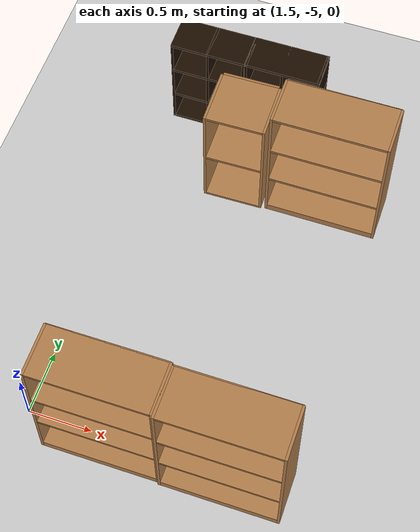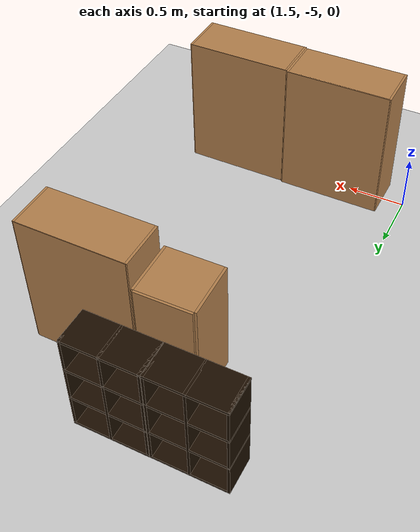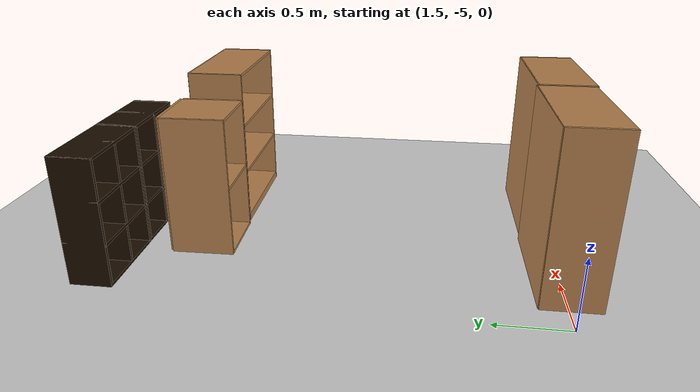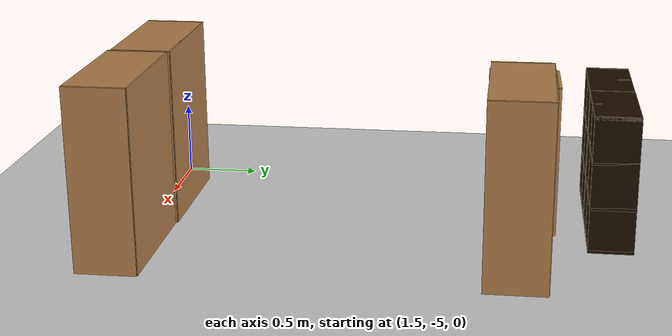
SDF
<sdf version="1.6">
 <world name="default">
  <model name="ground_plane">
   <static>1</static>
   <link name="link">
    <collision name="collision">
     <geometry><plane><normal>0 0 1</normal><size>100 100</size></plane></geometry>
     <surface>
      <contact><collide_bitmask>65535</collide_bitmask></contact>
      <friction><ode><mu>100</mu><mu2>50</mu2></ode></friction>
     </surface>
    </collision>
    <visual name="visual">
     <cast_shadows>0</cast_shadows>
     <geometry><plane><normal>0 0 1</normal><size>100 100</size></plane></geometry>
     <material>
      <script><uri>file://media/materials/scripts/gazebo.material</uri><name>Gazebo/Grey</name></script>
     </material>
    </visual>
   </link>
  </model>
  <model name="bookshelf">
   <static>1</static>
   <link name="link">
    <inertial><mass>1</mass></inertial>
    <collision name="back">
     <pose>0 0.005 0.6 0 -0 0</pose>
     <geometry><box><size>0.9 0.01 1.2</size></box></geometry>
    </collision>
    <visual name="visual1">
     <pose>0 0.005 0.6 0 -0 0</pose>
     <geometry><box><size>0.9 0.01 1.2</size></box></geometry>
     <material>
      <script><uri>file://media/materials/scripts/gazebo.material</uri><name>Gazebo/Wood</name></script>
     </material>
    </visual>
    <collision name="left_side">
     <pose>0.45 -0.195 0.6 0 -0 0</pose>
     <geometry><box><size>0.02 0.4 1.2</size></box></geometry>
    </collision>
    <visual name="visual2">
     <pose>0.45 -0.195 0.6 0 -0 0</pose>
     <geometry><box><size>0.02 0.4 1.2</size></box></geometry>
     <material>
      <script><uri>file://media/materials/scripts/gazebo.material</uri><name>Gazebo/Wood</name></script>
     </material>
    </visual>
    <collision name="right_side">
     <pose>-0.45 -0.195 0.6 0 -0 0</pose>
     <geometry><box><size>0.02 0.4 1.2</size></box></geometry>
    </collision>
    <visual name="visual3">
     <pose>-0.45 -0.195 0.6 0 -0 0</pose>
     <geometry><box><size>0.02 0.4 1.2</size></box></geometry>
     <material>
      <script><uri>file://media/materials/scripts/gazebo.material</uri><name>Gazebo/Wood</name></script>
     </material>
    </visual>
    <collision name="bottom">
     <pose>0 -0.195 0.03 0 -0 0</pose>
     <geometry><box><size>0.88 0.4 0.06</size></box></geometry>
    </collision>
    <visual name="visual4">
     <pose>0 -0.195 0.03 0 -0 0</pose>
     <geometry><box><size>0.88 0.4 0.06</size></box></geometry>
     <material>
      <script><uri>file://media/materials/scripts/gazebo.material</uri><name>Gazebo/Wood</name></script>
     </material>
    </visual>
    <collision name="top">
     <pose>0 -0.195 1.19 0 -0 0</pose>
     <geometry><box><size>0.88 0.4 0.02</size></box></geometry>
    </collision>
    <visual name="visual5">
     <pose>0 -0.195 1.19 0 -0 0</pose>
     <geometry><box><size>0.88 0.4 0.02</size></box></geometry>
     <material>
      <script><uri>file://media/materials/scripts/gazebo.material</uri><name>Gazebo/Wood</name></script>
     </material>
    </visual>
    <collision name="low_shelf">
     <pose>0 -0.195 0.43 0 -0 0</pose>
     <geometry><box><size>0.88 0.4 0.02</size></box></geometry>
    </collision>
    <visual name="visual6">
     <pose>0 -0.195 0.43 0 -0 0</pose>
     <geometry><box><size>0.88 0.4 0.02</size></box></geometry>
     <material>
      <script><uri>file://media/materials/scripts/gazebo.material</uri><name>Gazebo/Wood</name></script>
     </material>
    </visual>
    <collision name="high_shelf">
     <pose>0 -0.195 0.8 0 -0 0</pose>
     <geometry><box><size>0.88 0.4 0.02</size></box></geometry>
    </collision>
    <visual name="visual7">
     <pose>0 -0.195 0.8 0 -0 0</pose>
     <geometry><box><size>0.88 0.4 0.02</size></box></geometry>
     <material>
      <script><uri>file://media/materials/scripts/gazebo.material</uri><name>Gazebo/Wood</name></script>
     </material>
    </visual>
   </link>
   <pose>3.07661 -2.31495 0 0 -0 0</pose>
  </model>
  <model name="bookshelf_0">
   <static>1</static>
   <link name="link">
    <inertial><mass>1</mass></inertial>
    <collision name="back">
     <pose>0 0.005 0.6 0 -0 0</pose>
     <geometry><box><size>0.9 0.01 1.2</size></box></geometry>
    </collision>
    <visual name="visual1">
     <pose>0 0.005 0.6 0 -0 0</pose>
     <geometry><box><size>0.9 0.01 1.2</size></box></geometry>
     <material>
      <script><uri>file://media/materials/scripts/gazebo.material</uri><name>Gazebo/Wood</name></script>
     </material>
    </visual>
    <collision name="left_side">
     <pose>0.45 -0.195 0.6 0 -0 0</pose>
     <geometry><box><size>0.02 0.4 1.2</size></box></geometry>
    </collision>
    <visual name="visual2">
     <pose>0.45 -0.195 0.6 0 -0 0</pose>
     <geometry><box><size>0.02 0.4 1.2</size></box></geometry>
     <material>
      <script><uri>file://media/materials/scripts/gazebo.material</uri><name>Gazebo/Wood</name></script>
     </material>
    </visual>
    <collision name="right_side">
     <pose>-0.45 -0.195 0.6 0 -0 0</pose>
     <geometry><box><size>0.02 0.4 1.2</size></box></geometry>
    </collision>
    <visual name="visual3">
     <pose>-0.45 -0.195 0.6 0 -0 0</pose>
     <geometry><box><size>0.02 0.4 1.2</size></box></geometry>
     <material>
      <script><uri>file://media/materials/scripts/gazebo.material</uri><name>Gazebo/Wood</name></script>
     </material>
    </visual>
    <collision name="bottom">
     <pose>0 -0.195 0.03 0 -0 0</pose>
     <geometry><box><size>0.88 0.4 0.06</size></box></geometry>
    </collision>
    <visual name="visual4">
     <pose>0 -0.195 0.03 0 -0 0</pose>
     <geometry><box><size>0.88 0.4 0.06</size></box></geometry>
     <material>
      <script><uri>file://media/materials/scripts/gazebo.material</uri><name>Gazebo/Wood</name></script>
     </material>
    </visual>
    <collision name="top">
     <pose>0 -0.195 1.19 0 -0 0</pose>
     <geometry><box><size>0.88 0.4 0.02</size></box></geometry>
    </collision>
    <visual name="visual5">
     <pose>0 -0.195 1.19 0 -0 0</pose>
     <geometry><box><size>0.88 0.4 0.02</size></box></geometry>
     <material>
      <script><uri>file://media/materials/scripts/gazebo.material</uri><name>Gazebo/Wood</name></script>
     </material>
    </visual>
    <collision name="low_shelf">
     <pose>0 -0.195 0.43 0 -0 0</pose>
     <geometry><box><size>0.88 0.4 0.02</size></box></geometry>
    </collision>
    <visual name="visual6">
     <pose>0 -0.195 0.43 0 -0 0</pose>
     <geometry><box><size>0.88 0.4 0.02</size></box></geometry>
     <material>
      <script><uri>file://media/materials/scripts/gazebo.material</uri><name>Gazebo/Wood</name></script>
     </material>
    </visual>
    <collision name="high_shelf">
     <pose>0 -0.195 0.8 0 -0 0</pose>
     <geometry><box><size>0.88 0.4 0.02</size></box></geometry>
    </collision>
    <visual name="visual7">
     <pose>0 -0.195 0.8 0 -0 0</pose>
     <geometry><box><size>0.88 0.4 0.02</size></box></geometry>
     <material>
      <script><uri>file://media/materials/scripts/gazebo.material</uri><name>Gazebo/Wood</name></script>
     </material>
    </visual>
   </link>
   <pose>3.06869 -4.8324 0 0 -0 0</pose>
  </model>
  <model name="bookshelf_1">
   <static>1</static>
   <link name="link">
    <inertial><mass>1</mass></inertial>
    <collision name="back">
     <pose>0 0.005 0.6 0 -0 0</pose>
     <geometry><box><size>0.9 0.01 1.2</size></box></geometry>
    </collision>
    <visual name="visual1">
     <pose>0 0.005 0.6 0 -0 0</pose>
     <geometry><box><size>0.9 0.01 1.2</size></box></geometry>
     <material>
      <script><uri>file://media/materials/scripts/gazebo.material</uri><name>Gazebo/Wood</name></script>
     </material>
    </visual>
    <collision name="left_side">
     <pose>0.45 -0.195 0.6 0 -0 0</pose>
     <geometry><box><size>0.02 0.4 1.2</size></box></geometry>
    </collision>
    <visual name="visual2">
     <pose>0.45 -0.195 0.6 0 -0 0</pose>
     <geometry><box><size>0.02 0.4 1.2</size></box></geometry>
     <material>
      <script><uri>file://media/materials/scripts/gazebo.material</uri><name>Gazebo/Wood</name></script>
     </material>
    </visual>
    <collision name="right_side">
     <pose>-0.45 -0.195 0.6 0 -0 0</pose>
     <geometry><box><size>0.02 0.4 1.2</size></box></geometry>
    </collision>
    <visual name="visual3">
     <pose>-0.45 -0.195 0.6 0 -0 0</pose>
     <geometry><box><size>0.02 0.4 1.2</size></box></geometry>
     <material>
      <script><uri>file://media/materials/scripts/gazebo.material</uri><name>Gazebo/Wood</name></script>
     </material>
    </visual>
    <collision name="bottom">
     <pose>0 -0.195 0.03 0 -0 0</pose>
     <geometry><box><size>0.88 0.4 0.06</size></box></geometry>
    </collision>
    <visual name="visual4">
     <pose>0 -0.195 0.03 0 -0 0</pose>
     <geometry><box><size>0.88 0.4 0.06</size></box></geometry>
     <material>
      <script><uri>file://media/materials/scripts/gazebo.material</uri><name>Gazebo/Wood</name></script>
     </material>
    </visual>
    <collision name="top">
     <pose>0 -0.195 1.19 0 -0 0</pose>
     <geometry><box><size>0.88 0.4 0.02</size></box></geometry>
    </collision>
    <visual name="visual5">
     <pose>0 -0.195 1.19 0 -0 0</pose>
     <geometry><box><size>0.88 0.4 0.02</size></box></geometry>
     <material>
      <script><uri>file://media/materials/scripts/gazebo.material</uri><name>Gazebo/Wood</name></script>
     </material>
    </visual>
    <collision name="low_shelf">
     <pose>0 -0.195 0.43 0 -0 0</pose>
     <geometry><box><size>0.88 0.4 0.02</size></box></geometry>
    </collision>
    <visual name="visual6">
     <pose>0 -0.195 0.43 0 -0 0</pose>
     <geometry><box><size>0.88 0.4 0.02</size></box></geometry>
     <material>
      <script><uri>file://media/materials/scripts/gazebo.material</uri><name>Gazebo/Wood</name></script>
     </material>
    </visual>
    <collision name="high_shelf">
     <pose>0 -0.195 0.8 0 -0 0</pose>
     <geometry><box><size>0.88 0.4 0.02</size></box></geometry>
    </collision>
    <visual name="visual7">
     <pose>0 -0.195 0.8 0 -0 0</pose>
     <geometry><box><size>0.88 0.4 0.02</size></box></geometry>
     <material>
      <script><uri>file://media/materials/scripts/gazebo.material</uri><name>Gazebo/Wood</name></script>
     </material>
    </visual>
   </link>
   <pose>2.15249 -4.81844 0 0 -0 0</pose>
  </model>
  <model name="cabinet">
   <static>1</static>
   <link name="cabinet_bottom_plate">
    <inertial>
     <pose>0 0 -1 0 -0 0</pose>
     <inertia><ixx>2.05</ixx><ixy>0</ixy><ixz>0</ixz><iyy>2.05</iyy><iyz>0</iyz><izz>2.05</izz></inertia>
     <mass>25</mass>
    </inertial>
    <collision name="cabinet_bottom_plate_geom">
     <pose>0 0 0.01 0 -0 0</pose>
     <geometry><box><size>0.45 0.45 0.02</size></box></geometry>
    </collision>
    <visual name="cabinet_bottom_plate_geom_visual">
     <pose>0 0 0.01 0 -0 0</pose>
     <geometry><box><size>0.45 0.45 0.02</size></box></geometry>
     <material>
      <script><uri>file://media/materials/scripts/gazebo.material</uri><name>Gazebo/Wood</name></script>
     </material>
    </visual>
    <collision name="cabinet_bottom_plate_geom_cabinet_back_plate">
     <pose>0.235 0 0.51 0 -0 0</pose>
     <geometry><box><size>0.02 0.45 1.02</size></box></geometry>
    </collision>
    <visual name="cabinet_bottom_plate_geom_cabinet_back_plate_visual">
     <pose>0.235 0 0.51 0 -0 0</pose>
     <geometry><box><size>0.02 0.45 1.02</size></box></geometry>
     <material>
      <script><uri>file://media/materials/scripts/gazebo.material</uri><name>Gazebo/Wood</name></script>
     </material>
    </visual>
    <collision name="cabinet_bottom_plate_geom_cabinet_left_plate">
     <pose>0 0.235 0.51 0 -0 0</pose>
     <geometry><box><size>0.45 0.02 1.02</size></box></geometry>
    </collision>
    <visual name="cabinet_bottom_plate_geom_cabinet_left_plate_visual">
     <pose>0 0.235 0.51 0 -0 0</pose>
     <geometry><box><size>0.45 0.02 1.02</size></box></geometry>
     <material>
      <script><uri>file://media/materials/scripts/gazebo.material</uri><name>Gazebo/Wood</name></script>
     </material>
    </visual>
    <collision name="cabinet_bottom_plate_geom_cabinet_middle_plate">
     <pose>0 0 0.51 0 -0 0</pose>
     <geometry><box><size>0.45 0.45 0.02</size></box></geometry>
    </collision>
    <visual name="cabinet_bottom_plate_geom_cabinet_middle_plate_visual">
     <pose>0 0 0.51 0 -0 0</pose>
     <geometry><box><size>0.45 0.45 0.02</size></box></geometry>
     <material>
      <script><uri>file://media/materials/scripts/gazebo.material</uri><name>Gazebo/Wood</name></script>
     </material>
    </visual>
    <collision name="cabinet_bottom_plate_geom_cabinet_right_plate">
     <pose>0 -0.235 0.51 0 -0 0</pose>
     <geometry><box><size>0.45 0.02 1.02</size></box></geometry>
    </collision>
    <visual name="cabinet_bottom_plate_geom_cabinet_right_plate_visual">
     <pose>0 -0.235 0.51 0 -0 0</pose>
     <geometry><box><size>0.45 0.02 1.02</size></box></geometry>
     <material>
      <script><uri>file://media/materials/scripts/gazebo.material</uri><name>Gazebo/Wood</name></script>
     </material>
    </visual>
    <collision name="cabinet_bottom_plate_geom_cabinet_top_plate">
     <pose>0 0 1.01 0 -0 0</pose>
     <geometry><box><size>0.45 0.45 0.02</size></box></geometry>
    </collision>
    <visual name="cabinet_bottom_plate_geom_cabinet_top_plate_visual">
     <pose>0 0 1.01 0 -0 0</pose>
     <geometry><box><size>0.45 0.45 0.02</size></box></geometry>
     <material>
      <script><uri>file://media/materials/scripts/gazebo.material</uri><name>Gazebo/Wood</name></script>
     </material>
    </visual>
   </link>
   <pose>2.34001 -2.50112 0 0 -0 1.58728</pose>
  </model>
  <model name="6_Cube_StorageE">
   <link name="Wall_0">
    <pose>0 0 0.01 0 -0 0</pose>
    <inertial>
     <mass>1.6201</mass>
     <inertia><ixx>0.0119</ixx><iyy>0.0631</iyy><izz>0.0513</izz><ixy>0</ixy><ixz>0</ixz><iyz>0</iyz></inertia>
    </inertial>
    <collision name="Wall_0_Collision"><geometry><box><size>0.616 0.296 0.02</size></box></geometry></collision>
    <visual name="Wall_0_Visual">
     <geometry><box><size>0.616 0.296 0.02</size></box></geometry>
     <material>
      <script><uri>file://media/materials/scripts/gazebo.material</uri><name>Gazebo/Grey</name></script>
      <ambient>0.105882 0.0509804 0 1</ambient>
     </material>
    </visual>
   </link>
   <joint name="0_2" type="fixed">
    <pose>-0.308 0 0 0 -0 0</pose>
    <parent>Wall_2</parent>
    <child>Wall_0</child>
    <axis>
     <xyz>1 0 0</xyz>
     <use_parent_model_frame>0</use_parent_model_frame>
     <limit><lower>-1e+16</lower><upper>1e+16</upper></limit>
    </axis>
   </joint>
   <joint name="0_12" type="fixed">
    <parent>Wall_12</parent>
    <child>Wall_0</child>
    <axis>
     <xyz>0 0 1</xyz>
     <use_parent_model_frame>0</use_parent_model_frame>
     <limit><lower>-1e+16</lower><upper>1e+16</upper></limit>
    </axis>
   </joint>
   <joint name="0_4" type="fixed">
    <pose>0.308 0 0 0 -0 0</pose>
    <parent>Wall_4</parent>
    <child>Wall_0</child>
    <axis>
     <xyz>1 0 0</xyz>
     <use_parent_model_frame>0</use_parent_model_frame>
     <limit><lower>-1e+16</lower><upper>1e+16</upper></limit>
    </axis>
   </joint>
   <link name="Wall_10">
    <pose>0 0 0.61 0 -0 0</pose>
    <inertial>
     <mass>1.6201</mass>
     <inertia><ixx>0.0119</ixx><iyy>0.0631</iyy><izz>0.0513</izz><ixy>0</ixy><ixz>0</ixz><iyz>0</iyz></inertia>
    </inertial>
    <collision name="Wall_10_Collision"><geometry><box><size>0.616 0.296 0.02</size></box></geometry></collision>
    <visual name="Wall_10_Visual">
     <geometry><box><size>0.616 0.296 0.02</size></box></geometry>
     <material>
      <script><uri>file://media/materials/scripts/gazebo.material</uri><name>Gazebo/Grey</name></script>
      <ambient>0.105882 0.0509804 0 1</ambient>
     </material>
    </visual>
   </link>
   <joint name="10_2" type="fixed">
    <pose>-0.308 0 0 0 -0 0</pose>
    <parent>Wall_2</parent>
    <child>Wall_10</child>
    <axis>
     <xyz>1 0 0</xyz>
     <use_parent_model_frame>0</use_parent_model_frame>
     <limit><lower>-1e+16</lower><upper>1e+16</upper></limit>
    </axis>
   </joint>
   <joint name="10_12" type="fixed">
    <parent>Wall_12</parent>
    <child>Wall_10</child>
    <axis>
     <xyz>0 0 1</xyz>
     <use_parent_model_frame>0</use_parent_model_frame>
     <limit><lower>-1e+16</lower><upper>1e+16</upper></limit>
    </axis>
   </joint>
   <joint name="10_4" type="fixed">
    <pose>0.308 0 0 0 -0 0</pose>
    <parent>Wall_4</parent>
    <child>Wall_10</child>
    <axis>
     <xyz>1 0 0</xyz>
     <use_parent_model_frame>0</use_parent_model_frame>
     <limit><lower>-1e+16</lower><upper>1e+16</upper></limit>
    </axis>
   </joint>
   <link name="Wall_12">
    <pose>0 0 0.4575 0 -0 0</pose>
    <inertial>
     <mass>2.4065</mass>
     <inertia><ixx>0.0177</ixx><iyy>0.1855</iyy><izz>0.168</izz><ixy>0</ixy><ixz>0</ixz><iyz>0</iyz></inertia>
    </inertial>
    <collision name="Wall_12_Collision"><geometry><box><size>0.02 0.296 0.915</size></box></geometry></collision>
    <visual name="Wall_12_Visual">
     <geometry><box><size>0.02 0.296 0.915</size></box></geometry>
     <material>
      <script><uri>file://media/materials/scripts/gazebo.material</uri><name>Gazebo/Grey</name></script>
      <ambient>0.105882 0.0509804 0 1</ambient>
     </material>
    </visual>
   </link>
   <link name="Wall_2">
    <pose>-0.298 0 0.4575 0 -0 0</pose>
    <inertial>
     <mass>2.4065</mass>
     <inertia><ixx>0.0177</ixx><iyy>0.1855</iyy><izz>0.168</izz><ixy>0</ixy><ixz>0</ixz><iyz>0</iyz></inertia>
    </inertial>
    <collision name="Wall_2_Collision"><geometry><box><size>0.02 0.296 0.915</size></box></geometry></collision>
    <visual name="Wall_2_Visual">
     <geometry><box><size>0.02 0.296 0.915</size></box></geometry>
     <material>
      <script><uri>file://media/materials/scripts/gazebo.material</uri><name>Gazebo/Grey</name></script>
      <ambient>0.105882 0.0509804 0 1</ambient>
     </material>
    </visual>
   </link>
   <link name="Wall_4">
    <pose>0.298 0 0.4575 0 -0 0</pose>
    <inertial>
     <mass>2.4065</mass>
     <inertia><ixx>0.0177</ixx><iyy>0.1855</iyy><izz>0.168</izz><ixy>0</ixy><ixz>0</ixz><iyz>0</iyz></inertia>
    </inertial>
    <collision name="Wall_4_Collision"><geometry><box><size>0.02 0.296 0.915</size></box></geometry></collision>
    <visual name="Wall_4_Visual">
     <geometry><box><size>0.02 0.296 0.915</size></box></geometry>
     <material>
      <script><uri>file://media/materials/scripts/gazebo.material</uri><name>Gazebo/Grey</name></script>
      <ambient>0.105882 0.0509804 0 1</ambient>
     </material>
    </visual>
   </link>
   <link name="Wall_6">
    <pose>0 0 0.905 0 -0 0</pose>
    <inertial>
     <mass>1.6201</mass>
     <inertia><ixx>0.0119</ixx><iyy>0.0631</iyy><izz>0.0513</izz><ixy>0</ixy><ixz>0</ixz><iyz>0</iyz></inertia>
    </inertial>
    <collision name="Wall_6_Collision"><geometry><box><size>0.616 0.296 0.02</size></box></geometry></collision>
    <visual name="Wall_6_Visual">
     <geometry><box><size>0.616 0.296 0.02</size></box></geometry>
     <material>
      <script><uri>file://media/materials/scripts/gazebo.material</uri><name>Gazebo/Grey</name></script>
      <ambient>0.105882 0.0509804 0 1</ambient>
     </material>
    </visual>
   </link>
   <joint name="6_2" type="fixed">
    <pose>-0.308 0 0 0 -0 0</pose>
    <parent>Wall_2</parent>
    <child>Wall_6</child>
    <axis>
     <xyz>2 0 0</xyz>
     <use_parent_model_frame>0</use_parent_model_frame>
     <limit><lower>-1e+16</lower><upper>1e+16</upper></limit>
    </axis>
   </joint>
   <joint name="6_12" type="fixed">
    <parent>Wall_12</parent>
    <child>Wall_6</child>
    <axis>
     <xyz>0 0 1</xyz>
     <use_parent_model_frame>0</use_parent_model_frame>
     <limit><lower>-1e+16</lower><upper>1e+16</upper></limit>
    </axis>
   </joint>
   <joint name="6_4" type="fixed">
    <pose>0.308 0 0 0 -0 0</pose>
    <parent>Wall_4</parent>
    <child>Wall_6</child>
    <axis>
     <xyz>1 0 0</xyz>
     <use_parent_model_frame>0</use_parent_model_frame>
     <limit><lower>-1e+16</lower><upper>1e+16</upper></limit>
    </axis>
   </joint>
   <link name="Wall_8">
    <pose>0 0 0.305 0 -0 0</pose>
    <inertial>
     <mass>1.6201</mass>
     <inertia><ixx>0.0119</ixx><iyy>0.0631</iyy><izz>0.0513</izz><ixy>0</ixy><ixz>0</ixz><iyz>0</iyz></inertia>
    </inertial>
    <collision name="Wall_8_Collision"><geometry><box><size>0.616 0.296 0.02</size></box></geometry></collision>
    <visual name="Wall_8_Visual">
     <geometry><box><size>0.616 0.296 0.02</size></box></geometry>
     <material>
      <script><uri>file://media/materials/scripts/gazebo.material</uri><name>Gazebo/Grey</name></script>
      <ambient>0.105882 0.0509804 0 1</ambient>
     </material>
    </visual>
   </link>
   <joint name="8_2" type="fixed">
    <pose>-0.308 0 0 0 -0 0</pose>
    <parent>Wall_2</parent>
    <child>Wall_8</child>
    <axis>
     <xyz>1 0 0</xyz>
     <use_parent_model_frame>0</use_parent_model_frame>
     <limit><lower>-1e+16</lower><upper>1e+16</upper></limit>
    </axis>
   </joint>
   <joint name="8_12" type="fixed">
    <parent>Wall_12</parent>
    <child>Wall_8</child>
    <axis>
     <xyz>0 0 1</xyz>
     <use_parent_model_frame>0</use_parent_model_frame>
     <limit><lower>-1e+16</lower><upper>1e+16</upper></limit>
    </axis>
   </joint>
   <joint name="8_4" type="fixed">
    <pose>0.308 0 0 0 -0 0</pose>
    <parent>Wall_4</parent>
    <child>Wall_8</child>
    <axis>
     <xyz>1 0 0</xyz>
     <use_parent_model_frame>0</use_parent_model_frame>
     <limit><lower>-1e+16</lower><upper>1e+16</upper></limit>
    </axis>
   </joint>
   <static>1</static>
   <pose>1.90019 -1.90779 0 0 -0 0</pose>
  </model>
  <model name="6_Cube_StorageE_0">
   <link name="Wall_0">
    <pose>0 0 0.01 0 -0 0</pose>
    <inertial>
     <mass>1.6201</mass>
     <inertia><ixx>0.0119</ixx><iyy>0.0631</iyy><izz>0.0513</izz><ixy>0</ixy><ixz>0</ixz><iyz>0</iyz></inertia>
    </inertial>
    <collision name="Wall_0_Collision"><geometry><box><size>0.616 0.296 0.02</size></box></geometry></collision>
    <visual name="Wall_0_Visual">
     <geometry><box><size>0.616 0.296 0.02</size></box></geometry>
     <material>
      <script><uri>file://media/materials/scripts/gazebo.material</uri><name>Gazebo/Grey</name></script>
      <ambient>0.105882 0.0509804 0 1</ambient>
     </material>
    </visual>
   </link>
   <joint name="0_2" type="fixed">
    <pose>-0.308 0 0 0 -0 0</pose>
    <parent>Wall_2</parent>
    <child>Wall_0</child>
    <axis>
     <xyz>1 0 0</xyz>
     <use_parent_model_frame>0</use_parent_model_frame>
     <limit><lower>-1e+16</lower><upper>1e+16</upper></limit>
    </axis>
   </joint>
   <joint name="0_12" type="fixed">
    <parent>Wall_12</parent>
    <child>Wall_0</child>
    <axis>
     <xyz>0 0 1</xyz>
     <use_parent_model_frame>0</use_parent_model_frame>
     <limit><lower>-1e+16</lower><upper>1e+16</upper></limit>
    </axis>
   </joint>
   <joint name="0_4" type="fixed">
    <pose>0.308 0 0 0 -0 0</pose>
    <parent>Wall_4</parent>
    <child>Wall_0</child>
    <axis>
     <xyz>1 0 0</xyz>
     <use_parent_model_frame>0</use_parent_model_frame>
     <limit><lower>-1e+16</lower><upper>1e+16</upper></limit>
    </axis>
   </joint>
   <link name="Wall_10">
    <pose>0 0 0.61 0 -0 0</pose>
    <inertial>
     <mass>1.6201</mass>
     <inertia><ixx>0.0119</ixx><iyy>0.0631</iyy><izz>0.0513</izz><ixy>0</ixy><ixz>0</ixz><iyz>0</iyz></inertia>
    </inertial>
    <collision name="Wall_10_Collision"><geometry><box><size>0.616 0.296 0.02</size></box></geometry></collision>
    <visual name="Wall_10_Visual">
     <geometry><box><size>0.616 0.296 0.02</size></box></geometry>
     <material>
      <script><uri>file://media/materials/scripts/gazebo.material</uri><name>Gazebo/Grey</name></script>
      <ambient>0.105882 0.0509804 0 1</ambient>
     </material>
    </visual>
   </link>
   <joint name="10_2" type="fixed">
    <pose>-0.308 0 0 0 -0 0</pose>
    <parent>Wall_2</parent>
    <child>Wall_10</child>
    <axis>
     <xyz>1 0 0</xyz>
     <use_parent_model_frame>0</use_parent_model_frame>
     <limit><lower>-1e+16</lower><upper>1e+16</upper></limit>
    </axis>
   </joint>
   <joint name="10_12" type="fixed">
    <parent>Wall_12</parent>
    <child>Wall_10</child>
    <axis>
     <xyz>0 0 1</xyz>
     <use_parent_model_frame>0</use_parent_model_frame>
     <limit><lower>-1e+16</lower><upper>1e+16</upper></limit>
    </axis>
   </joint>
   <joint name="10_4" type="fixed">
    <pose>0.308 0 0 0 -0 0</pose>
    <parent>Wall_4</parent>
    <child>Wall_10</child>
    <axis>
     <xyz>1 0 0</xyz>
     <use_parent_model_frame>0</use_parent_model_frame>
     <limit><lower>-1e+16</lower><upper>1e+16</upper></limit>
    </axis>
   </joint>
   <link name="Wall_12">
    <pose>0 0 0.4575 0 -0 0</pose>
    <inertial>
     <mass>2.4065</mass>
     <inertia><ixx>0.0177</ixx><iyy>0.1855</iyy><izz>0.168</izz><ixy>0</ixy><ixz>0</ixz><iyz>0</iyz></inertia>
    </inertial>
    <collision name="Wall_12_Collision"><geometry><box><size>0.02 0.296 0.915</size></box></geometry></collision>
    <visual name="Wall_12_Visual">
     <geometry><box><size>0.02 0.296 0.915</size></box></geometry>
     <material>
      <script><uri>file://media/materials/scripts/gazebo.material</uri><name>Gazebo/Grey</name></script>
      <ambient>0.105882 0.0509804 0 1</ambient>
     </material>
    </visual>
   </link>
   <link name="Wall_2">
    <pose>-0.298 0 0.4575 0 -0 0</pose>
    <inertial>
     <mass>2.4065</mass>
     <inertia><ixx>0.0177</ixx><iyy>0.1855</iyy><izz>0.168</izz><ixy>0</ixy><ixz>0</ixz><iyz>0</iyz></inertia>
    </inertial>
    <collision name="Wall_2_Collision"><geometry><box><size>0.02 0.296 0.915</size></box></geometry></collision>
    <visual name="Wall_2_Visual">
     <geometry><box><size>0.02 0.296 0.915</size></box></geometry>
     <material>
      <script><uri>file://media/materials/scripts/gazebo.material</uri><name>Gazebo/Grey</name></script>
      <ambient>0.105882 0.0509804 0 1</ambient>
     </material>
    </visual>
   </link>
   <link name="Wall_4">
    <pose>0.298 0 0.4575 0 -0 0</pose>
    <inertial>
     <mass>2.4065</mass>
     <inertia><ixx>0.0177</ixx><iyy>0.1855</iyy><izz>0.168</izz><ixy>0</ixy><ixz>0</ixz><iyz>0</iyz></inertia>
    </inertial>
    <collision name="Wall_4_Collision"><geometry><box><size>0.02 0.296 0.915</size></box></geometry></collision>
    <visual name="Wall_4_Visual">
     <geometry><box><size>0.02 0.296 0.915</size></box></geometry>
     <material>
      <script><uri>file://media/materials/scripts/gazebo.material</uri><name>Gazebo/Grey</name></script>
      <ambient>0.105882 0.0509804 0 1</ambient>
     </material>
    </visual>
   </link>
   <link name="Wall_6">
    <pose>0 0 0.905 0 -0 0</pose>
    <inertial>
     <mass>1.6201</mass>
     <inertia><ixx>0.0119</ixx><iyy>0.0631</iyy><izz>0.0513</izz><ixy>0</ixy><ixz>0</ixz><iyz>0</iyz></inertia>
    </inertial>
    <collision name="Wall_6_Collision"><geometry><box><size>0.616 0.296 0.02</size></box></geometry></collision>
    <visual name="Wall_6_Visual">
     <geometry><box><size>0.616 0.296 0.02</size></box></geometry>
     <material>
      <script><uri>file://media/materials/scripts/gazebo.material</uri><name>Gazebo/Grey</name></script>
      <ambient>0.105882 0.0509804 0 1</ambient>
     </material>
    </visual>
   </link>
   <joint name="6_2" type="fixed">
    <pose>-0.308 0 0 0 -0 0</pose>
    <parent>Wall_2</parent>
    <child>Wall_6</child>
    <axis>
     <xyz>2 0 0</xyz>
     <use_parent_model_frame>0</use_parent_model_frame>
     <limit><lower>-1e+16</lower><upper>1e+16</upper></limit>
    </axis>
   </joint>
   <joint name="6_12" type="fixed">
    <parent>Wall_12</parent>
    <child>Wall_6</child>
    <axis>
     <xyz>0 0 1</xyz>
     <use_parent_model_frame>0</use_parent_model_frame>
     <limit><lower>-1e+16</lower><upper>1e+16</upper></limit>
    </axis>
   </joint>
   <joint name="6_4" type="fixed">
    <pose>0.308 0 0 0 -0 0</pose>
    <parent>Wall_4</parent>
    <child>Wall_6</child>
    <axis>
     <xyz>1 0 0</xyz>
     <use_parent_model_frame>0</use_parent_model_frame>
     <limit><lower>-1e+16</lower><upper>1e+16</upper></limit>
    </axis>
   </joint>
   <link name="Wall_8">
    <pose>0 0 0.305 0 -0 0</pose>
    <inertial>
     <mass>1.6201</mass>
     <inertia><ixx>0.0119</ixx><iyy>0.0631</iyy><izz>0.0513</izz><ixy>0</ixy><ixz>0</ixz><iyz>0</iyz></inertia>
    </inertial>
    <collision name="Wall_8_Collision"><geometry><box><size>0.616 0.296 0.02</size></box></geometry></collision>
    <visual name="Wall_8_Visual">
     <geometry><box><size>0.616 0.296 0.02</size></box></geometry>
     <material>
      <script><uri>file://media/materials/scripts/gazebo.material</uri><name>Gazebo/Grey</name></script>
      <ambient>0.105882 0.0509804 0 1</ambient>
     </material>
    </visual>
   </link>
   <joint name="8_2" type="fixed">
    <pose>-0.308 0 0 0 -0 0</pose>
    <parent>Wall_2</parent>
    <child>Wall_8</child>
    <axis>
     <xyz>1 0 0</xyz>
     <use_parent_model_frame>0</use_parent_model_frame>
     <limit><lower>-1e+16</lower><upper>1e+16</upper></limit>
    </axis>
   </joint>
   <joint name="8_12" type="fixed">
    <parent>Wall_12</parent>
    <child>Wall_8</child>
    <axis>
     <xyz>0 0 1</xyz>
     <use_parent_model_frame>0</use_parent_model_frame>
     <limit><lower>-1e+16</lower><upper>1e+16</upper></limit>
    </axis>
   </joint>
   <joint name="8_4" type="fixed">
    <pose>0.308 0 0 0 -0 0</pose>
    <parent>Wall_4</parent>
    <child>Wall_8</child>
    <axis>
     <xyz>1 0 0</xyz>
     <use_parent_model_frame>0</use_parent_model_frame>
     <limit><lower>-1e+16</lower><upper>1e+16</upper></limit>
    </axis>
   </joint>
   <static>1</static>
   <pose>2.51935 -1.90641 0 0 -0 0</pose>
  </model>
 </world>
</sdf>
